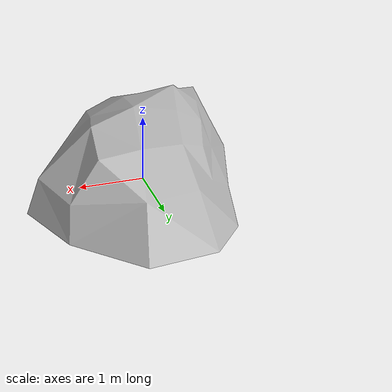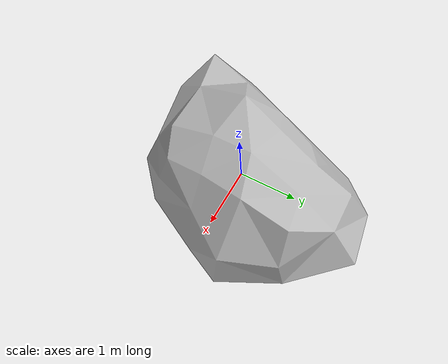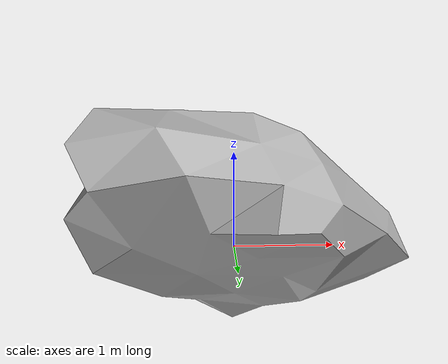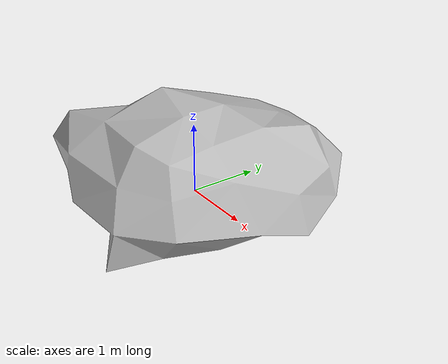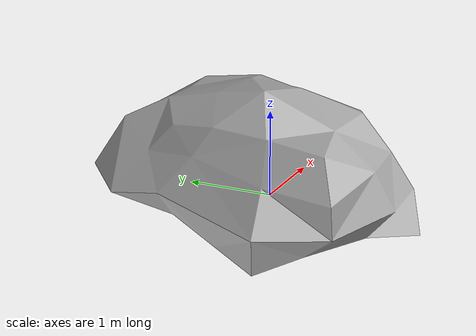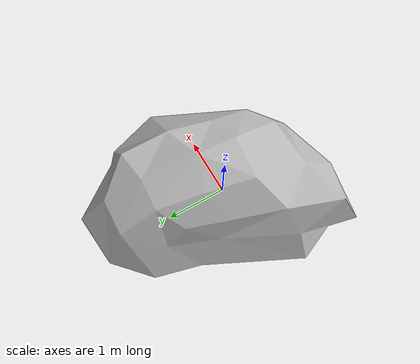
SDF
<?xml version="1.0" ?>

<sdf version="1.4">
  <model name="iai_rock">
    <static>true</static>
    <link name="iai_rock">
      <collision name="collision">
	<geometry>
            <mesh>
	      <uri>model://rock/Rock.stl</uri>
	    </mesh>
          </geometry>
      </collision>
      <visual name="vis">
        <cast_shadows>false</cast_shadows>

	<geometry>
            <mesh>
	      <uri>model://rock/Rock.dae</uri>
	    </mesh>
          </geometry>
      </visual>

    </link>
          <plugin name="scanable"
              filename="libiai_object_transmitter.so">
            <object_type>terrain</object_type>
            <absolute_detection>true</absolute_detection>
            <attribute key="otype" value="rock"/>
            <attribute key="manmade" value="false"/>
            <attribute key="navigation" value="none"/>
      </plugin>
  </model>
</sdf>
